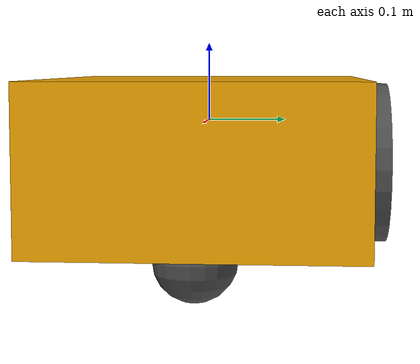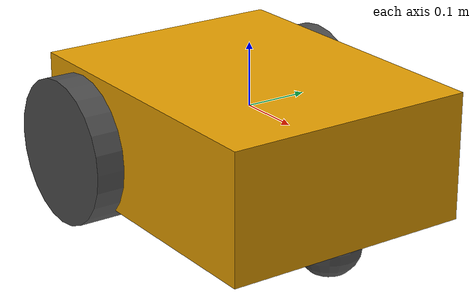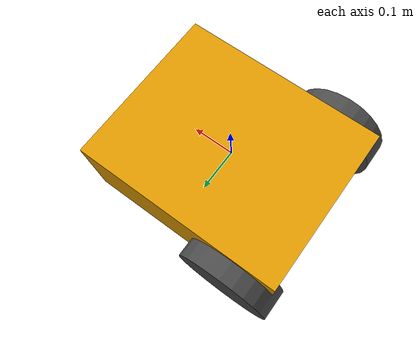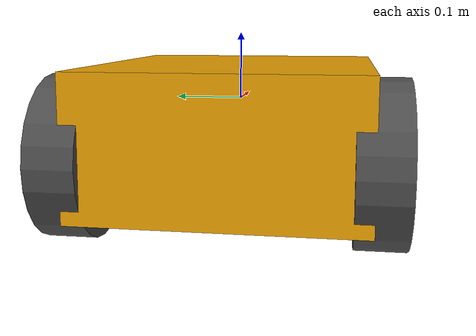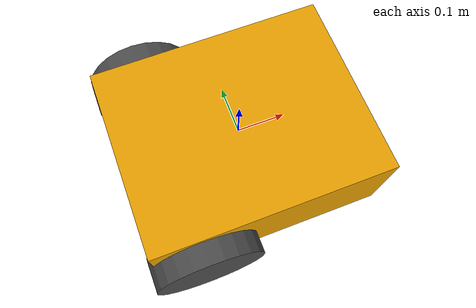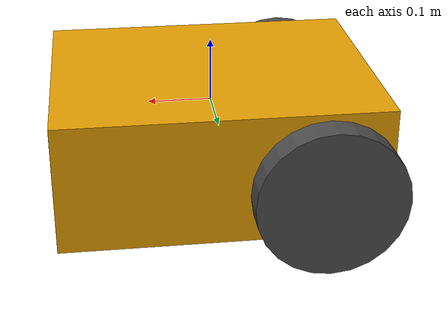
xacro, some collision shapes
<?xml version="1.0"?><robot name="pi" xmlns:xacro="http://ros.org/wiki/xacro"><material name="b"><color rgba="0.3 0.3 0.3 1"/></material><xacro:macro name="gzc" params="link"><gazebo reference="${link}"><material>Gazebo/Black</material></gazebo></xacro:macro><xacro:macro name="inr"><inertial><mass value="1"/><inertia ixx="0.01" ixy="0.0" ixz="0.0" iyy="0.01" iyz="0.0" izz="0.01"/></inertial></xacro:macro><xacro:macro name="c"><geometry><cylinder length="0.07" radius="0.115"/></geometry></xacro:macro><xacro:macro name="wh" params="n"><link name="${n}_wheel"><visual><xacro:c/><material name="b"/></visual><collision><xacro:c/></collision><xacro:inr/></link></xacro:macro><xacro:macro name="wj" params="n s"><joint name="${n}_wheel_to_axis" type="continuous"><origin rpy="-1.57075 0 0" xyz="-0.15 ${s}0.21 -0.07"/><axis xyz="0 0 1"/><parent link="base_link"/><child link="${n}_wheel"/></joint></xacro:macro><link name="base_link"><visual><geometry><mesh filename="package://my_model/c.dae"/></geometry></visual><collision><geometry><box size="0.5 0.4 0.2"/></geometry><origin xyz="0 0 -0.046"/></collision><xacro:inr/></link><link name="caster"><visual><geometry><sphere radius="0.05"/></geometry><material name="b"/></visual><collision><geometry><sphere radius="0.05"/></geometry></collision><xacro:inr/></link><joint name="base_to_caster" type="continuous"><origin xyz="0.2 0 -0.15"/><axis xyz="0 1 1"/><parent link="base_link"/><child link="caster"/></joint><link name="axis"><visual><geometry><cylinder radius="0.02" length="0.4"/></geometry><origin rpy="1.5708 0 0" xyz="-0.15 0 -0.07"/><material name="b"/></visual></link><joint name="base_to_axis" type="fixed"><parent link="base_link"/><child link="axis"/></joint><xacro:wh n="left"/><xacro:wj n="left" s="-"/><xacro:wh n="right"/><xacro:wj n="right" s=""/><gazebo reference="base_link"><sensor name="imu" type="imu"><always_on>1</always_on><update_rate>100</update_rate><visualize>1</visualize><plugin filename="libgazebo_ros_imu_sensor.so" name="imu_plugin"><topicName>imu</topicName><bodyName>imu</bodyName><updateRateHZ>1.0</updateRateHZ><frameName>imu</frameName></plugin></sensor></gazebo><xacro:gzc link="caster"/><xacro:gzc link="axis"/><xacro:gzc link="left_wheel"/><xacro:gzc link="right_wheel"/><xacro:gzc link="imu"/></robot>
